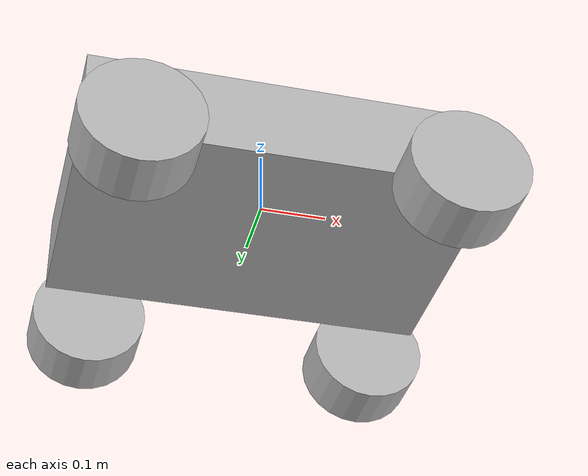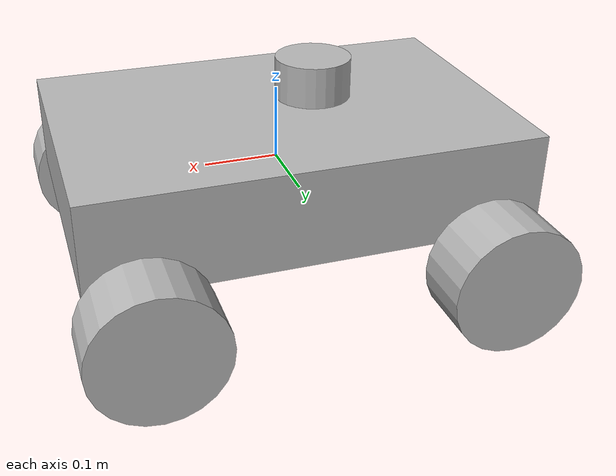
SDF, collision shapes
<sdf version='1.7'>
  <model name='scout_mini'>
    <link name='base_link'>
      <inertial>
        <pose>-3e-06 0 6e-06 0 -0 0</pose>
        <mass>18.001</mass>
        <inertia>
          <ixx>2.28965</ixx>
          <ixy>0</ixy>
          <ixz>5.77168e-06</ixz>
          <iyy>5.10499</iyy>
          <iyz>0</iyz>
          <izz>3.43247</izz>
        </inertia>
      </inertial>
      <collision name='base_link_collision'>
        <pose>0 0 0.008 0 -0 0</pose>
        <geometry>
          <box>
            <size>0.595 0.395 0.13</size>
          </box>
        </geometry>
      </collision>
      <collision name='base_link_fixed_joint_lump__base_scan_collision_1'>
        <pose>-0.052 0 0.111 0 -0 0</pose>
        <geometry>
          <cylinder>
            <length>0.055</length>
            <radius>0.0508</radius>
          </cylinder>
        </geometry>
        <surface>
          <contact>
            <ode/>
          </contact>
          <friction>
            <ode/>
          </friction>
        </surface>
      </collision>
      <visual name='base_link_visual'>
        <pose>0 0 0 1.5707 0 1.5707</pose>
        <geometry>
          <mesh>
            <scale>1 1 1</scale>
            <uri>model://scout_description/meshes/scout_mini/mini_base_link2.dae</uri>
          </mesh>
        </geometry>
      </visual>
      <visual name='base_link_fixed_joint_lump__base_scan_visual_1'>
        <pose>-0.064 0 0.121 0 -0 0</pose>
        <geometry>
          <mesh>
            <scale>0.001 0.001 0.001</scale>
            <uri>model://scout_description/meshes/scout_mini/lds.dae</uri>
          </mesh>
        </geometry>
      </visual>
      <gravity>1</gravity>
      <sensor name='imu_sensor' type='imu'>
        <always_on>1</always_on>
        <update_rate>100</update_rate>
        <visualize>1</visualize>
        <topic>__default_topic__</topic>
        <plugin name='gz::sim::systems::Imu' filename='gz-sim-imu-system'>
          <topicName>imu</topicName>
          <bodyName>base_scan</bodyName>
          <updateRateHZ>100.0</updateRateHZ>
          <gaussianNoise>0.0</gaussianNoise>
          <xyzOffset>0 0 0</xyzOffset>
          <rpyOffset>0 0 0</rpyOffset>
          <frameName>imu_link</frameName>
          <initialOrientationAsReference>0</initialOrientationAsReference>
        </plugin>
        <pose>0 0 0 0 -0 0</pose>
      </sensor>
    </link>
    <joint name='front_left_wheel' type='revolute'>
      <pose relative_to='base_link'>0.226 0.245 -0.0905 0 -0 0</pose>
      <parent>base_link</parent>
      <child>front_left_wheel_link</child>
      <axis>
        <xyz>0 -1 0</xyz>
        <limit>
          <lower>-1e+16</lower>
          <upper>1e+16</upper>
        </limit>
        <dynamics>
          <spring_reference>0</spring_reference>
          <spring_stiffness>0</spring_stiffness>
        </dynamics>
      </axis>
    </joint>
    <link name='front_left_wheel_link'>
      <pose relative_to='front_left_wheel'>0 0 0 0 -0 0</pose>
      <inertial>
        <pose>0 0 0 0 -0 0</pose>
        <mass>1</mass>
        <inertia>
          <ixx>0.7171</ixx>
          <ixy>0</ixy>
          <ixz>0</ixz>
          <iyy>0.1361</iyy>
          <iyz>0</iyz>
          <izz>0.7171</izz>
        </inertia>
      </inertial>
      <collision name='front_left_wheel_link_collision'>
        <pose>0 0 0 1.57079 -0 0</pose>
        <geometry>
          <cylinder>
            <length>0.0852</length>
            <radius>0.0875</radius>
          </cylinder>
        </geometry>
      </collision>
      <visual name='front_left_wheel_link_visual'>
        <pose>-0.221 -0.225 0.0925 0 -0 0</pose>
        <geometry>
          <mesh>
            <scale>1 1 1</scale>
            <uri>model://scout_description/meshes/scout_mini/mini_wheel2.dae</uri>
          </mesh>
        </geometry>
      </visual>
    </link>
    <joint name='front_right_wheel' type='revolute'>
      <pose relative_to='base_link'>0.226 -0.245 -0.0905 3.14 -0 0</pose>
      <parent>base_link</parent>
      <child>front_right_wheel_link</child>
      <axis>
        <xyz>0 -1 0</xyz>
        <limit>
          <lower>-1e+16</lower>
          <upper>1e+16</upper>
        </limit>
        <dynamics>
          <spring_reference>0</spring_reference>
          <spring_stiffness>0</spring_stiffness>
        </dynamics>
      </axis>
    </joint>
    <link name='front_right_wheel_link'>
      <pose relative_to='front_right_wheel'>0 0 0 0 -0 0</pose>
      <inertial>
        <pose>0 0 0 0 -0 0</pose>
        <mass>1</mass>
        <inertia>
          <ixx>0.7171</ixx>
          <ixy>0</ixy>
          <ixz>0</ixz>
          <iyy>0.1361</iyy>
          <iyz>0</iyz>
          <izz>0.7171</izz>
        </inertia>
      </inertial>
      <collision name='front_right_wheel_link_collision'>
        <pose>0 0 0 1.57079 -0 0</pose>
        <geometry>
          <cylinder>
            <length>0.0852</length>
            <radius>0.0875</radius>
          </cylinder>
        </geometry>
      </collision>
      <visual name='front_right_wheel_link_visual'>
        <pose>-0.221 -0.225 0.0925 0 -0 0</pose>
        <geometry>
          <mesh>
            <scale>1 1 1</scale>
            <uri>model://scout_description/meshes/scout_mini/mini_wheel2.dae</uri>
          </mesh>
        </geometry>
      </visual>
    </link>
    <joint name='rear_left_wheel' type='revolute'>
      <pose relative_to='base_link'>-0.226 0.245 -0.0905 0 -0 0</pose>
      <parent>base_link</parent>
      <child>rear_left_wheel_link</child>
      <axis>
        <xyz>0 -1 0</xyz>
        <limit>
          <lower>-1e+16</lower>
          <upper>1e+16</upper>
        </limit>
        <dynamics>
          <spring_reference>0</spring_reference>
          <spring_stiffness>0</spring_stiffness>
        </dynamics>
      </axis>
    </joint>
    <link name='rear_left_wheel_link'>
      <pose relative_to='rear_left_wheel'>0 0 0 0 -0 0</pose>
      <inertial>
        <pose>0 0 0 0 -0 0</pose>
        <mass>1</mass>
        <inertia>
          <ixx>0.7171</ixx>
          <ixy>0</ixy>
          <ixz>0</ixz>
          <iyy>0.1361</iyy>
          <iyz>0</iyz>
          <izz>0.7171</izz>
        </inertia>
      </inertial>
      <collision name='rear_left_wheel_link_collision'>
        <pose>0 0 0 1.57079 -0 0</pose>
        <geometry>
          <cylinder>
            <length>0.0852</length>
            <radius>0.0875</radius>
          </cylinder>
        </geometry>
      </collision>
      <visual name='rear_left_wheel_link_visual'>
        <pose>-0.221 -0.225 0.0925 0 -0 0</pose>
        <geometry>
          <mesh>
            <scale>1 1 1</scale>
            <uri>model://scout_description/meshes/scout_mini/mini_wheel2.dae</uri>
          </mesh>
        </geometry>
      </visual>
    </link>
    <joint name='rear_right_wheel' type='revolute'>
      <pose relative_to='base_link'>-0.226 -0.245 -0.0905 3.14 -0 0</pose>
      <parent>base_link</parent>
      <child>rear_right_wheel_link</child>
      <axis>
        <xyz>0 -1 0</xyz>
        <limit>
          <lower>-1e+16</lower>
          <upper>1e+16</upper>
        </limit>
        <dynamics>
          <spring_reference>0</spring_reference>
          <spring_stiffness>0</spring_stiffness>
        </dynamics>
      </axis>
    </joint>
    <link name='rear_right_wheel_link'>
      <pose relative_to='rear_right_wheel'>0 0 0 0 -0 0</pose>
      <inertial>
        <pose>0 0 0 0 -0 0</pose>
        <mass>1</mass>
        <inertia>
          <ixx>0.7171</ixx>
          <ixy>0</ixy>
          <ixz>0</ixz>
          <iyy>0.1361</iyy>
          <iyz>0</iyz>
          <izz>0.7171</izz>
        </inertia>
      </inertial>
      <collision name='rear_right_wheel_link_collision'>
        <pose>0 0 0 1.57079 -0 0</pose>
        <geometry>
          <cylinder>
            <length>0.0852</length>
            <radius>0.0875</radius>
          </cylinder>
        </geometry>
      </collision>
      <visual name='rear_right_wheel_link_visual'>
        <pose>-0.221 -0.225 0.0925 0 -0 0</pose>
        <geometry>
          <mesh>
            <scale>1 1 1</scale>
            <uri>model://scout_description/meshes/scout_mini/mini_wheel2.dae</uri>
          </mesh>
        </geometry>
      </visual>
    </link>
    <static>0</static>
    <plugin name='gz::sim::systems::DiffDrive' filename='gz-sim-diff-drive-system'>
      <left_joint>rear_left_wheel</left_joint>
      <right_joint>front_left_wheel</right_joint>
      <left_joint>rear_right_wheel</left_joint>
      <right_joint>front_right_wheel</right_joint>
      <wheel_separation>0.287</wheel_separation>
      <wheel_radius>0.0875</wheel_radius>
      <max_linear_acceleration>3.5</max_linear_acceleration>
      <topic>cmd_vel</topic>
      <odom_topic>odom</odom_topic>
      <frame_id>odom</frame_id>
      <tf_topic>/tf</tf_topic>
      <odom_publisher_frequency>30</odom_publisher_frequency>
      <child_frame_id>base_footprint</child_frame_id>
    </plugin>
    <plugin name='gz::sim::systems::JointStatePublisher' filename='gz-sim-joint-state-publisher-system'>
      <topic>joint_states</topic>
      <joint_name>rear_left_wheel</joint_name>
      <joint_name>rear_right_wheel</joint_name>
      <joint_name>front_left_wheel</joint_name>
      <joint_name>front_right_wheel</joint_name>
    </plugin>
  </model>
</sdf>
